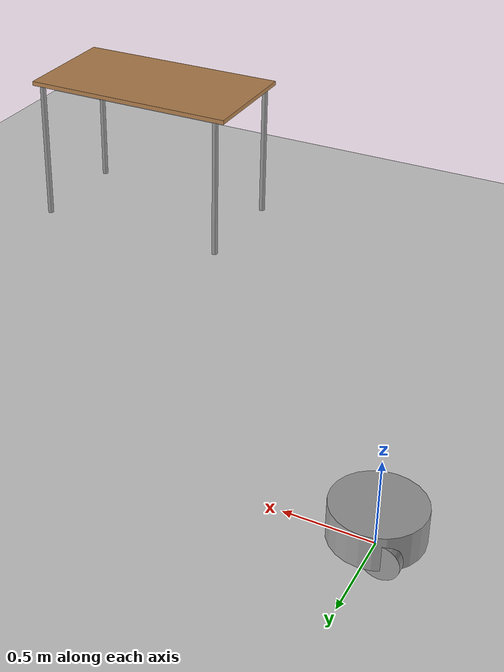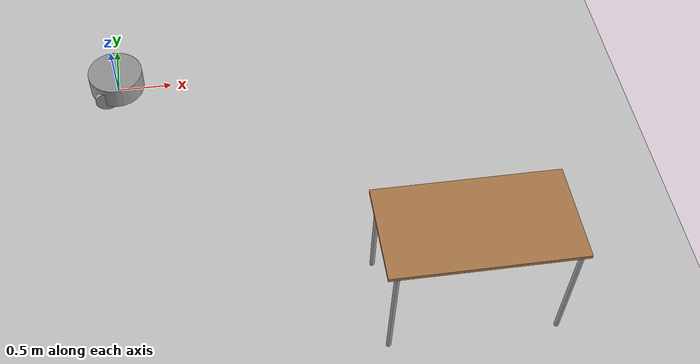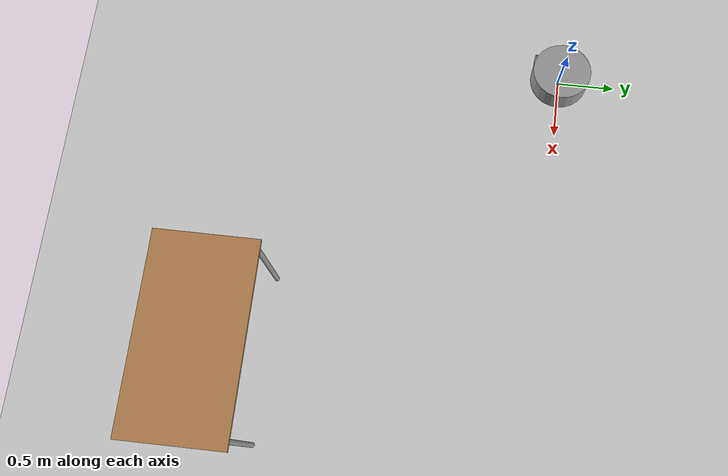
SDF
<sdf version="1.6">
 <world name="default">
  <model name="ground_plane">
   <static>1</static>
   <link name="link">
    <collision name="collision">
     <geometry><plane><normal>0 0 1</normal><size>100 100</size></plane></geometry>
     <surface>
      <contact><collide_bitmask>65535</collide_bitmask></contact>
      <friction><ode><mu>100</mu><mu2>50</mu2></ode></friction>
     </surface>
    </collision>
    <visual name="visual">
     <cast_shadows>0</cast_shadows>
     <geometry><plane><normal>0 0 1</normal><size>100 100</size></plane></geometry>
     <material>
      <script><uri>file://media/materials/scripts/gazebo.material</uri><name>Gazebo/Grey</name></script>
     </material>
    </visual>
   </link>
  </model>
  <model name="robot">
   <link name="link_0">
    <inertial>
     <mass>1</mass>
     <inertia><ixx>0.145833</ixx><ixy>0</ixy><ixz>0</ixz><iyy>0.145833</iyy><iyz>0</iyz><izz>0.125</izz></inertia>
    </inertial>
    <pose>-0.1 0.2 0.1 1.5708 -0 0</pose>
    <visual name="visual">
     <geometry><cylinder><radius>0.1</radius><length>0.05</length></cylinder></geometry>
     <material>
      <lighting>1</lighting>
      <script><uri>file://media/materials/scripts/gazebo.material</uri><name>Gazebo/Grey</name></script>
      <shader type="vertex"><normal_map>__default__</normal_map></shader>
      <ambient>0.3 0.3 0.3 1</ambient>
      <diffuse>0.7 0.7 0.7 1</diffuse>
      <specular>0.01 0.01 0.01 1</specular>
      <emissive>0 0 0 1</emissive>
     </material>
    </visual>
    <collision name="collision">
     <geometry><cylinder><radius>0.1</radius><length>0.05</length></cylinder></geometry>
     <surface>
      <friction>
       <ode><mu>1</mu><mu2>1</mu2><fdir1>0 0 0</fdir1><slip1>0</slip1><slip2>0</slip2></ode>
       <torsional>
        <coefficient>1</coefficient>
        <patch_radius>0</patch_radius>
        <surface_radius>0</surface_radius>
        <use_patch_radius>1</use_patch_radius>
        <ode><slip>0</slip></ode>
       </torsional>
      </friction>
      <bounce><restitution_coefficient>0</restitution_coefficient><threshold>1e+06</threshold></bounce>
      <contact>
       <collide_without_contact>0</collide_without_contact>
       <collide_without_contact_bitmask>1</collide_without_contact_bitmask>
       <collide_bitmask>1</collide_bitmask>
       <ode>
        <soft_cfm>0</soft_cfm>
        <soft_erp>0.2</soft_erp>
        <kp>1e+13</kp>
        <kd>1</kd>
        <max_vel>0.01</max_vel>
        <min_depth>0</min_depth>
       </ode>
       <bullet>
        <split_impulse>1</split_impulse>
        <split_impulse_penetration_threshold>-0.01</split_impulse_penetration_threshold>
        <soft_cfm>0</soft_cfm>
        <soft_erp>0.2</soft_erp>
        <kp>1e+13</kp>
        <kd>1</kd>
       </bullet>
      </contact>
     </surface>
    </collision>
   </link>
   <link name="link_0_clone">
    <inertial>
     <mass>1</mass>
     <inertia><ixx>0.145833</ixx><ixy>0</ixy><ixz>0</ixz><iyy>0.145833</iyy><iyz>0</iyz><izz>0.125</izz></inertia>
    </inertial>
    <pose>-0.1 -0.2 0.1 1.5708 -0 0</pose>
    <visual name="visual">
     <geometry><cylinder><radius>0.1</radius><length>0.05</length></cylinder></geometry>
     <material>
      <lighting>1</lighting>
      <script><uri>file://media/materials/scripts/gazebo.material</uri><name>Gazebo/Grey</name></script>
      <shader type="vertex"><normal_map>__default__</normal_map></shader>
      <ambient>0.3 0.3 0.3 1</ambient>
      <diffuse>0.7 0.7 0.7 1</diffuse>
      <specular>0.01 0.01 0.01 1</specular>
      <emissive>0 0 0 1</emissive>
     </material>
    </visual>
    <collision name="collision">
     <geometry><cylinder><radius>0.1</radius><length>0.05</length></cylinder></geometry>
     <surface>
      <friction>
       <ode><mu>1</mu><mu2>1</mu2><fdir1>0 0 0</fdir1><slip1>0</slip1><slip2>0</slip2></ode>
       <torsional>
        <coefficient>1</coefficient>
        <patch_radius>0</patch_radius>
        <surface_radius>0</surface_radius>
        <use_patch_radius>1</use_patch_radius>
        <ode><slip>0</slip></ode>
       </torsional>
      </friction>
      <bounce><restitution_coefficient>0</restitution_coefficient><threshold>1e+06</threshold></bounce>
      <contact>
       <collide_without_contact>0</collide_without_contact>
       <collide_without_contact_bitmask>1</collide_without_contact_bitmask>
       <collide_bitmask>1</collide_bitmask>
       <ode>
        <soft_cfm>0</soft_cfm>
        <soft_erp>0.2</soft_erp>
        <kp>1e+13</kp>
        <kd>1</kd>
        <max_vel>0.01</max_vel>
        <min_depth>0</min_depth>
       </ode>
       <bullet>
        <split_impulse>1</split_impulse>
        <split_impulse_penetration_threshold>-0.01</split_impulse_penetration_threshold>
        <soft_cfm>0</soft_cfm>
        <soft_erp>0.2</soft_erp>
        <kp>1e+13</kp>
        <kd>1</kd>
       </bullet>
      </contact>
     </surface>
    </collision>
   </link>
   <link name="link_1">
    <inertial>
     <mass>1</mass>
     <inertia><ixx>0.145833</ixx><ixy>0</ixy><ixz>0</ixz><iyy>0.145833</iyy><iyz>0</iyz><izz>0.125</izz></inertia>
    </inertial>
    <pose>-0 0 0.15 0 -0 0</pose>
    <visual name="visual">
     <geometry><cylinder><radius>0.25</radius><length>0.2</length></cylinder></geometry>
     <material>
      <lighting>1</lighting>
      <script><uri>file://media/materials/scripts/gazebo.material</uri><name>Gazebo/Grey</name></script>
      <shader type="vertex"><normal_map>__default__</normal_map></shader>
      <ambient>0.3 0.3 0.3 1</ambient>
      <diffuse>0.7 0.7 0.7 1</diffuse>
      <specular>0.01 0.01 0.01 1</specular>
      <emissive>0 0 0 1</emissive>
     </material>
    </visual>
    <collision name="collision">
     <geometry><cylinder><radius>0.25</radius><length>0.2</length></cylinder></geometry>
     <surface>
      <friction>
       <ode><mu>1</mu><mu2>1</mu2><fdir1>0 0 0</fdir1><slip1>0</slip1><slip2>0</slip2></ode>
       <torsional>
        <coefficient>1</coefficient>
        <patch_radius>0</patch_radius>
        <surface_radius>0</surface_radius>
        <use_patch_radius>1</use_patch_radius>
        <ode><slip>0</slip></ode>
       </torsional>
      </friction>
      <bounce><restitution_coefficient>0</restitution_coefficient><threshold>1e+06</threshold></bounce>
      <contact>
       <collide_without_contact>0</collide_without_contact>
       <collide_without_contact_bitmask>1</collide_without_contact_bitmask>
       <collide_bitmask>1</collide_bitmask>
       <ode>
        <soft_cfm>0</soft_cfm>
        <soft_erp>0.2</soft_erp>
        <kp>1e+13</kp>
        <kd>1</kd>
        <max_vel>0.01</max_vel>
        <min_depth>0</min_depth>
       </ode>
       <bullet>
        <split_impulse>1</split_impulse>
        <split_impulse_penetration_threshold>-0.01</split_impulse_penetration_threshold>
        <soft_cfm>0</soft_cfm>
        <soft_erp>0.2</soft_erp>
        <kp>1e+13</kp>
        <kd>1</kd>
       </bullet>
      </contact>
     </surface>
    </collision>
   </link>
   <link name="link_2">
    <inertial>
     <mass>1</mass>
     <inertia><ixx>0.1</ixx><ixy>0</ixy><ixz>0</ixz><iyy>0.1</iyy><iyz>0</iyz><izz>0.1</izz></inertia>
    </inertial>
    <pose>0.15 0 0.075 0 -0 0</pose>
    <visual name="visual">
     <geometry><sphere><radius>0.075</radius></sphere></geometry>
     <material>
      <lighting>1</lighting>
      <script><uri>file://media/materials/scripts/gazebo.material</uri><name>Gazebo/Grey</name></script>
      <shader type="vertex"><normal_map>__default__</normal_map></shader>
      <ambient>0.3 0.3 0.3 1</ambient>
      <diffuse>0.7 0.7 0.7 1</diffuse>
      <specular>0.01 0.01 0.01 1</specular>
      <emissive>0 0 0 1</emissive>
     </material>
    </visual>
    <collision name="collision">
     <geometry><sphere><radius>0.075</radius></sphere></geometry>
     <surface>
      <friction>
       <ode><mu>1</mu><mu2>1</mu2><fdir1>0 0 0</fdir1><slip1>0</slip1><slip2>0</slip2></ode>
       <torsional>
        <coefficient>1</coefficient>
        <patch_radius>0</patch_radius>
        <surface_radius>0</surface_radius>
        <use_patch_radius>1</use_patch_radius>
        <ode><slip>0</slip></ode>
       </torsional>
      </friction>
      <bounce><restitution_coefficient>0</restitution_coefficient><threshold>1e+06</threshold></bounce>
      <contact>
       <collide_without_contact>0</collide_without_contact>
       <collide_without_contact_bitmask>1</collide_without_contact_bitmask>
       <collide_bitmask>1</collide_bitmask>
       <ode>
        <soft_cfm>0</soft_cfm>
        <soft_erp>0.2</soft_erp>
        <kp>1e+13</kp>
        <kd>1</kd>
        <max_vel>0.01</max_vel>
        <min_depth>0</min_depth>
       </ode>
       <bullet>
        <split_impulse>1</split_impulse>
        <split_impulse_penetration_threshold>-0.01</split_impulse_penetration_threshold>
        <soft_cfm>0</soft_cfm>
        <soft_erp>0.2</soft_erp>
        <kp>1e+13</kp>
        <kd>1</kd>
       </bullet>
      </contact>
     </surface>
    </collision>
   </link>
   <joint name="link_1_JOINT_0" type="ball">
    <parent>link_1</parent>
    <child>link_2</child>
    <physics>
     <ode><limit><cfm>0</cfm><erp>0.2</erp></limit><suspension><cfm>0</cfm><erp>0.2</erp></suspension></ode>
    </physics>
   </joint>
   <joint name="link_1_JOINT_1" type="revolute">
    <parent>link_1</parent>
    <child>link_0_clone</child>
    <axis>
     <xyz>0 0 1</xyz>
     <use_parent_model_frame>0</use_parent_model_frame>
     <limit>
      <lower>-1.79769e+308</lower>
      <upper>1.79769e+308</upper>
      <effort>-1</effort>
      <velocity>-1</velocity>
     </limit>
     <dynamics>
      <spring_reference>0</spring_reference>
      <spring_stiffness>0</spring_stiffness>
      <damping>0</damping>
     </dynamics>
    </axis>
    <physics>
     <ode><limit><cfm>0</cfm><erp>0.2</erp></limit><suspension><cfm>0</cfm><erp>0.2</erp></suspension></ode>
    </physics>
   </joint>
   <joint name="link_1_JOINT_2" type="revolute">
    <parent>link_1</parent>
    <child>link_0</child>
    <axis>
     <xyz>0 0 1</xyz>
     <use_parent_model_frame>0</use_parent_model_frame>
     <limit>
      <lower>-1.79769e+308</lower>
      <upper>1.79769e+308</upper>
      <effort>-1</effort>
      <velocity>-1</velocity>
     </limit>
     <dynamics>
      <spring_reference>0</spring_reference>
      <spring_stiffness>0</spring_stiffness>
      <damping>0</damping>
     </dynamics>
    </axis>
    <physics>
     <ode><limit><cfm>0</cfm><erp>0.2</erp></limit><suspension><cfm>0</cfm><erp>0.2</erp></suspension></ode>
    </physics>
   </joint>
   <static>0</static>
  </model>
  <model name="table_1">
   <static>1</static>
   <link name="link">
    <collision name="surface">
     <pose>0 0 1 0 -0 0</pose>
     <geometry><box><size>1.5 0.8 0.03</size></box></geometry>
     <surface><friction><ode><mu>0.6</mu><mu2>0.6</mu2></ode></friction></surface>
    </collision>
    <visual name="visual1">
     <pose>0 0 1 0 -0 0</pose>
     <geometry><box><size>1.5 0.8 0.03</size></box></geometry>
     <material>
      <script><uri>file://media/materials/scripts/gazebo.material</uri><name>Gazebo/Wood</name></script>
     </material>
    </visual>
    <collision name="front_left_leg">
     <pose>0.68 0.38 0.5 0 -0 0</pose>
     <geometry><cylinder><radius>0.02</radius><length>1</length></cylinder></geometry>
    </collision>
    <visual name="front_left_leg">
     <pose>0.68 0.38 0.5 0 -0 0</pose>
     <geometry><cylinder><radius>0.02</radius><length>1</length></cylinder></geometry>
     <material>
      <script><uri>file://media/materials/scripts/gazebo.material</uri><name>Gazebo/Grey</name></script>
     </material>
    </visual>
    <collision name="front_right_leg">
     <pose>0.68 -0.38 0.5 0 -0 0</pose>
     <geometry><cylinder><radius>0.02</radius><length>1</length></cylinder></geometry>
    </collision>
    <visual name="front_right_leg">
     <pose>0.68 -0.38 0.5 0 -0 0</pose>
     <geometry><cylinder><radius>0.02</radius><length>1</length></cylinder></geometry>
     <material>
      <script><uri>file://media/materials/scripts/gazebo.material</uri><name>Gazebo/Grey</name></script>
     </material>
    </visual>
    <collision name="back_right_leg">
     <pose>-0.68 -0.38 0.5 0 -0 0</pose>
     <geometry><cylinder><radius>0.02</radius><length>1</length></cylinder></geometry>
    </collision>
    <visual name="back_right_leg">
     <pose>-0.68 -0.38 0.5 0 -0 0</pose>
     <geometry><cylinder><radius>0.02</radius><length>1</length></cylinder></geometry>
     <material>
      <script><uri>file://media/materials/scripts/gazebo.material</uri><name>Gazebo/Grey</name></script>
     </material>
    </visual>
    <collision name="back_left_leg">
     <pose>-0.68 0.38 0.5 0 -0 0</pose>
     <geometry><cylinder><radius>0.02</radius><length>1</length></cylinder></geometry>
    </collision>
    <visual name="back_left_leg">
     <pose>-0.68 0.38 0.5 0 -0 0</pose>
     <geometry><cylinder><radius>0.02</radius><length>1</length></cylinder></geometry>
     <material>
      <script><uri>file://media/materials/scripts/gazebo.material</uri><name>Gazebo/Grey</name></script>
     </material>
    </visual>
   </link>
   <pose>2.7245 -2.6098 0 0 -0 0</pose>
  </model>
 </world>
</sdf>
